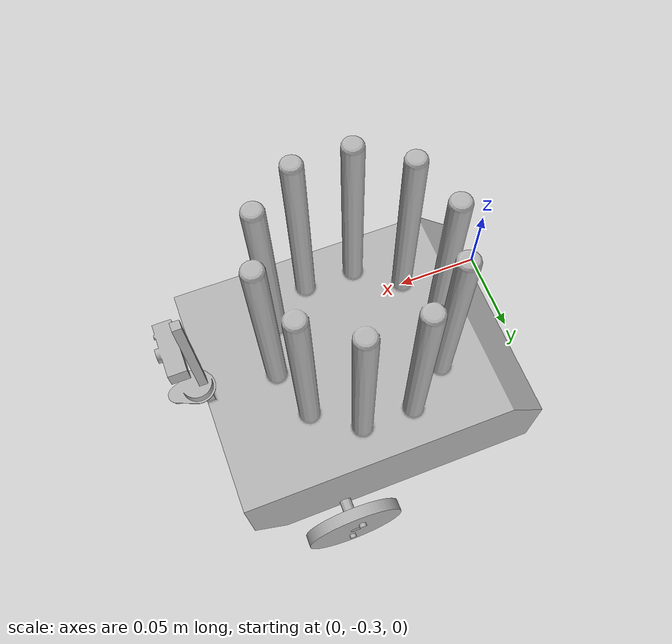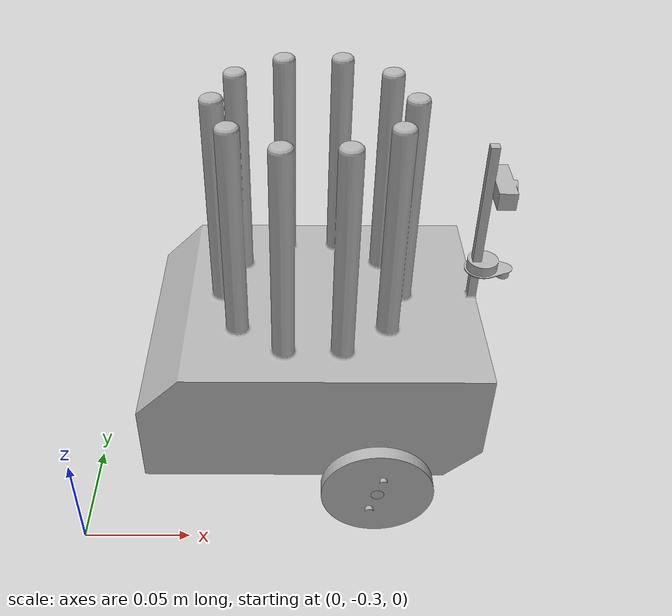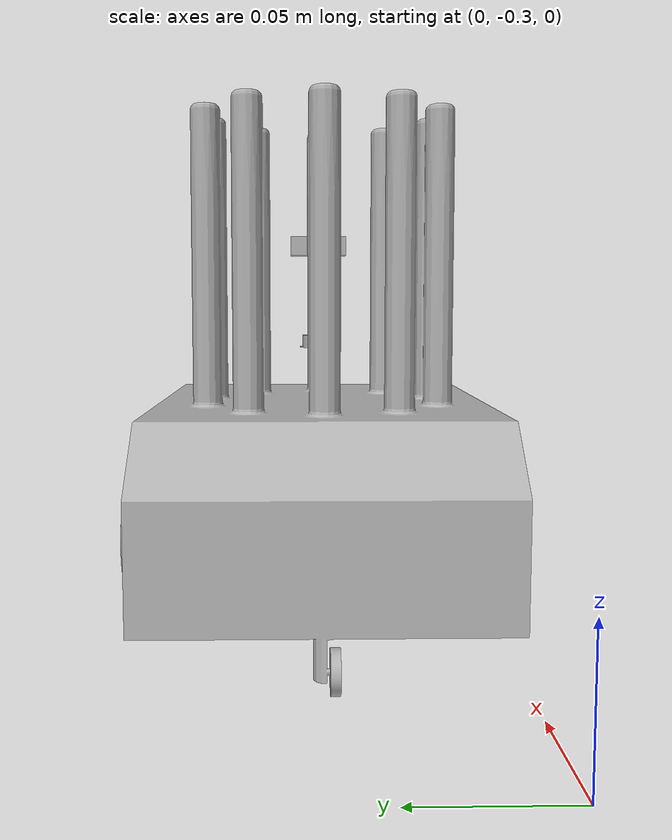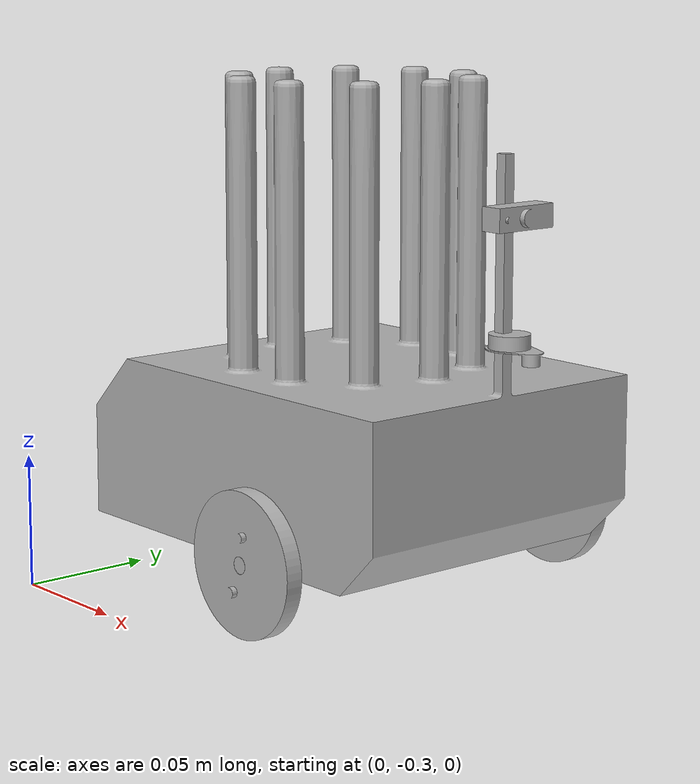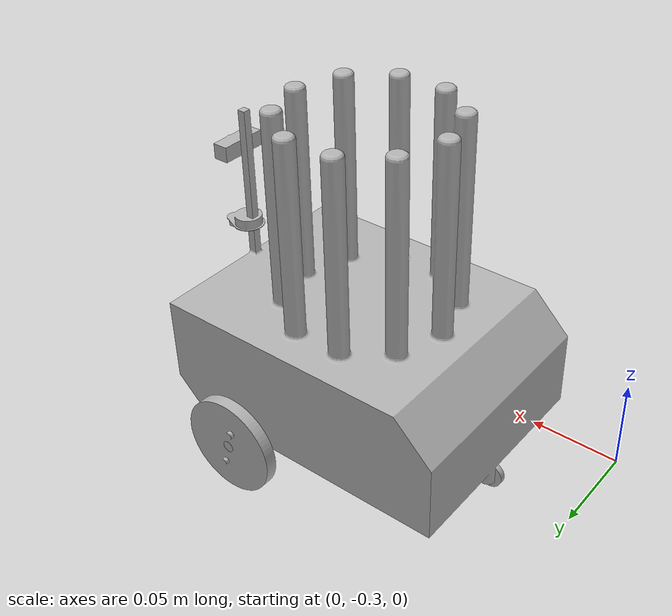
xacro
<?xml version="1.0" ?>
<robot name="uvc2308hollow" xmlns:xacro="http://www.ros.org/wiki/xacro">

<xacro:include filename="$(find uvc2308hollow_description)/urdf/materials.xacro" />
<xacro:include filename="$(find uvc2308hollow_description)/urdf/uvc2308hollow.gazebo" />

<gazebo>
<plugin filename="libgazebo_ros_diff_drive.so" name="differential_drive_controller">
<legacyMode>false</legacyMode>
<alwaysOn>true</alwaysOn>
<updateRate>20</updateRate>
<leftJoint>Lrev</leftJoint>
<rightJoint>Rrev</rightJoint>
<wheelSeparation>0.64</wheelSeparation>
<wheelDiameter>0.3</wheelDiameter>
<torque>0.1</torque>
<commandTopic>cmd_vel</commandTopic>
<odometryTopic>odom</odometryTopic>
<odometryFrame>odom</odometryFrame>
<robotBaseFrame>base_link</robotBaseFrame>
<publishWheelTF>true</publishWheelTF>
<publishWheelJointState>true</publishWheelJointState>

</plugin>
</gazebo>

<link name="base_link">
  <inertial>
    <origin rpy="0 0 0" xyz="0.11592649426270178 -0.23199901286152788 0.08078674500535285"/>
    <mass value="4.21100120560406"/>
    <inertia ixx="0.010624" ixy="0.0" ixz="0.000155" iyy="0.014948" iyz="0.0" izz="0.016095"/>
  </inertial>
  <visual>
    <origin rpy="0 0 0" xyz="0 0 0"/>
    <geometry>
      <mesh filename="package://uvc2308hollow_description/meshes/base_link.stl" scale="0.001 0.001 0.001"/>
    </geometry>
    <material name="silver"/>
  </visual>
  <collision>
    <origin rpy="0 0 0" xyz="0 0 0"/>
    <geometry>
      <mesh filename="package://uvc2308hollow_description/meshes/base_link.stl" scale="0.001 0.001 0.001"/>
    </geometry>
  </collision>
</link>

<link name="FR_2">
  <inertial>
    <origin rpy="0 0 0" xyz="5.566059789213762e-06 0.0029866993303004352 6.363714498178186e-06"/>
    <mass value="0.09054674643115511"/>
    <inertia ixx="1.5e-05" ixy="-0.0" ixz="0.0" iyy="2.9e-05" iyz="-0.0" izz="1.5e-05"/>
  </inertial>
  <visual>
    <origin rpy="0 0 0" xyz="-0.137027 0.306 -0.039559"/>
    <geometry>
      <mesh filename="package://uvc2308hollow_description/meshes/FR_2.stl" scale="0.001 0.001 0.001"/>
    </geometry>
    <material name="silver"/>
  </visual>
  <collision>
    <origin rpy="0 0 0" xyz="-0.137027 0.306 -0.039559"/>
    <geometry>
      <mesh filename="package://uvc2308hollow_description/meshes/FR_2.stl" scale="0.001 0.001 0.001"/>
    </geometry>
  </collision>
</link>

<link name="castor_1">
  <inertial>
    <origin rpy="0 0 0" xyz="-1.5403312722539475e-09 0.0014999999999955882 2.0798374779709694e-07"/>
    <mass value="0.0035512563356178673"/>
    <inertia ixx="0.0" ixy="-0.0" ixz="-0.0" iyy="0.0" iyz="-0.0" izz="0.0"/>
  </inertial>
  <visual>
    <origin rpy="0 0 0" xyz="-0.037027 0.236 -0.021559"/>
    <geometry>
      <mesh filename="package://uvc2308hollow_description/meshes/castor_1.stl" scale="0.001 0.001 0.001"/>
    </geometry>
    <material name="silver"/>
  </visual>
  <collision>
    <origin rpy="0 0 0" xyz="-0.037027 0.236 -0.021559"/>
    <geometry>
      <mesh filename="package://uvc2308hollow_description/meshes/castor_1.stl" scale="0.001 0.001 0.001"/>
    </geometry>
  </collision>
</link>

<link name="FL_1">
  <inertial>
    <origin rpy="0 0 0" xyz="5.5660597897688735e-06 -0.0029866993303119538 -5.947747002243986e-06"/>
    <mass value="0.09054674643115528"/>
    <inertia ixx="1.5e-05" ixy="0.0" ixz="-0.0" iyy="2.9e-05" iyz="-0.0" izz="1.5e-05"/>
  </inertial>
  <visual>
    <origin rpy="0 0 0" xyz="-0.137027 0.158 -0.039559"/>
    <geometry>
      <mesh filename="package://uvc2308hollow_description/meshes/FL_1.stl" scale="0.001 0.001 0.001"/>
    </geometry>
    <material name="silver"/>
  </visual>
  <collision>
    <origin rpy="0 0 0" xyz="-0.137027 0.158 -0.039559"/>
    <geometry>
      <mesh filename="package://uvc2308hollow_description/meshes/FL_1.stl" scale="0.001 0.001 0.001"/>
    </geometry>
  </collision>
</link>

<link name="camera_1">
  <inertial>
    <origin rpy="0 0 0" xyz="0.004186049926702656 -1.6635844886259132e-05 2.0801754474497614e-07"/>
    <mass value="0.012526168557512393"/>
    <inertia ixx="1e-06" ixy="0.0" ixz="-0.0" iyy="0.0" iyz="-0.0" izz="1e-06"/>
  </inertial>
  <visual>
    <origin rpy="0 0 0" xyz="-0.185027 0.232 -0.153559"/>
    <geometry>
      <mesh filename="package://uvc2308hollow_description/meshes/camera_1.stl" scale="0.001 0.001 0.001"/>
    </geometry>
    <material name="silver"/>
  </visual>
  <collision>
    <origin rpy="0 0 0" xyz="-0.185027 0.232 -0.153559"/>
    <geometry>
      <mesh filename="package://uvc2308hollow_description/meshes/camera_1.stl" scale="0.001 0.001 0.001"/>
    </geometry>
  </collision>
</link>

<link name="lidar_1">
  <inertial>
    <origin rpy="0 0 0" xyz="0.0013250925537811042 2.8303208554625314e-08 0.0018466349196084864"/>
    <mass value="0.007973515638463729"/>
    <inertia ixx="0.0" ixy="0.0" ixz="0.0" iyy="0.0" iyz="-0.0" izz="0.0"/>
  </inertial>
  <visual>
    <origin rpy="0 0 0" xyz="-0.186027 0.232002 -0.109759"/>
    <geometry>
      <mesh filename="package://uvc2308hollow_description/meshes/lidar_1.stl" scale="0.001 0.001 0.001"/>
    </geometry>
    <material name="silver"/>
  </visual>
  <collision>
    <origin rpy="0 0 0" xyz="-0.186027 0.232002 -0.109759"/>
    <geometry>
      <mesh filename="package://uvc2308hollow_description/meshes/lidar_1.stl" scale="0.001 0.001 0.001"/>
    </geometry>
  </collision>
</link>

<joint name="Rrev" type="continuous">
  <origin rpy="0 0 0" xyz="0.137027 -0.306 0.039559"/>
  <parent link="base_link"/>
  <child link="FR_2"/>
  <axis xyz="0.0 -1.0 -0.0"/>
</joint>

<joint name="CastorRev" type="continuous">
  <origin rpy="0 0 0" xyz="0.037027 -0.236 0.021559"/>
  <parent link="base_link"/>
  <child link="castor_1"/>
  <axis xyz="0.0 -1.0 -0.0"/>
</joint>

<joint name="Lrev" type="continuous">
  <origin rpy="0 0 0" xyz="0.137027 -0.158 0.039559"/>
  <parent link="base_link"/>
  <child link="FL_1"/>
  <axis xyz="-0.0 1.0 0.0"/>
</joint>

<joint name="Rigid5" type="fixed">
  <origin rpy="0 0 0" xyz="0.185027 -0.232 0.153559"/>
  <parent link="base_link"/>
  <child link="camera_1"/>
</joint>

<joint name="Rigid6" type="fixed">
  <origin rpy="0 0 0" xyz="0.186027 -0.232002 0.109759"/>
  <parent link="base_link"/>
  <child link="lidar_1"/>
</joint>

</robot>

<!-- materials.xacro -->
<robot name="uvc2308hollow" xmlns:xacro="http://www.ros.org/wiki/xacro" >

<material name="silver">
  <color rgba="0.700 0.700 0.700 1.000"/>
</material>

</robot>

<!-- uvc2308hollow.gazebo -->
<robot name="uvc2308hollow" xmlns:xacro="http://www.ros.org/wiki/xacro" >

<xacro:property name="body_color" value="Gazebo/Silver" />

<gazebo>
  <plugin filename="libgazebo_ros_control.so" name="control"/>
</gazebo>
<gazebo reference="base_link">
  <material>${body_color}</material>
  <mu1>0.2</mu1>
  <mu2>0.2</mu2>
  <selfCollide>true</selfCollide>
  <gravity>true</gravity>
</gazebo>

<gazebo reference="FR_2">
  <material>${body_color}</material>
  <mu1>0.2</mu1>
  <mu2>0.2</mu2>
  <selfCollide>true</selfCollide>
</gazebo>

<gazebo reference="castor_1">
  <material>${body_color}</material>
  <mu1>0.2</mu1>
  <mu2>0.2</mu2>
  <selfCollide>true</selfCollide>
</gazebo>

<gazebo reference="FL_1">
  <material>${body_color}</material>
  <mu1>0.2</mu1>
  <mu2>0.2</mu2>
  <selfCollide>true</selfCollide>
</gazebo>

<gazebo reference="camera_1">
  <material>${body_color}</material>
  <mu1>0.2</mu1>
  <mu2>0.2</mu2>
  <selfCollide>true</selfCollide>
</gazebo>

<gazebo reference="lidar_1">
  <material>${body_color}</material>
  <mu1>0.2</mu1>
  <mu2>0.2</mu2>
  <selfCollide>true</selfCollide>
</gazebo>

</robot>
